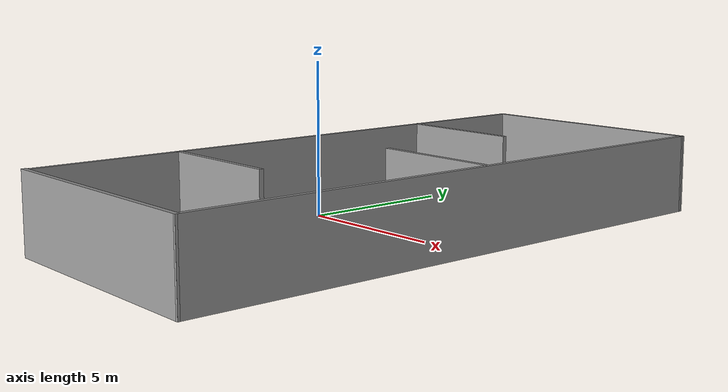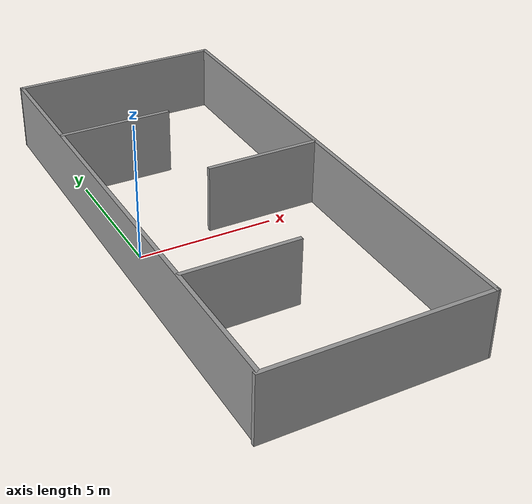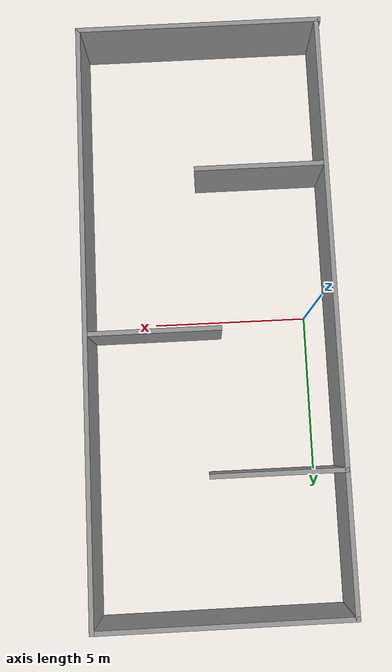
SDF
<?xml version='1.0'?>
<sdf version='1.7'>
  <model name='dsw'>
    <pose>3.16563 -0.058902 0 0 -0 0</pose>
    <link name='Wall_0'>
      <collision name='Wall_0_Collision'>
        <geometry>
          <box>
            <size>8 0.15 2.5</size>
          </box>
        </geometry>
        <pose>0 0 1.25 0 -0 0</pose>
      </collision>
      <visual name='Wall_0_Visual'>
        <pose>0 0 1.25 0 -0 0</pose>
        <geometry>
          <box>
            <size>8 0.15 2.5</size>
          </box>
        </geometry>
        <material>
          <script>
            <uri>file://media/materials/scripts/gazebo.material</uri>
            <name>Gazebo/Grey</name>
          </script>
          <ambient>1 1 1 1</ambient>
        </material>
        <meta>
          <layer>0</layer>
        </meta>
      </visual>
      <pose>-0.070634 -9.47226 0 0 -0 0</pose>
    </link>
    <link name='Wall_1'>
      <collision name='Wall_1_Collision'>
        <geometry>
          <box>
            <size>19.095 0.15 2.5</size>
          </box>
        </geometry>
        <pose>0 0 1.25 0 -0 0</pose>
      </collision>
      <visual name='Wall_1_Visual'>
        <pose>0 0 1.25 0 -0 0</pose>
        <geometry>
          <box>
            <size>19.095 0.15 2.5</size>
          </box>
        </geometry>
        <material>
          <script>
            <uri>file://media/materials/scripts/gazebo.material</uri>
            <name>Gazebo/Grey</name>
          </script>
          <ambient>1 1 1 1</ambient>
        </material>
        <meta>
          <layer>0</layer>
        </meta>
      </visual>
      <pose>3.92472 0 0 0 -0 1.56337</pose>
    </link>
    <link name='Wall_2'>
      <collision name='Wall_2_Collision'>
        <geometry>
          <box>
            <size>8.07576 0.15 2.5</size>
          </box>
        </geometry>
        <pose>0 0 1.25 0 -0 0</pose>
      </collision>
      <visual name='Wall_2_Visual'>
        <pose>0 0 1.25 0 -0 0</pose>
        <geometry>
          <box>
            <size>8.07576 0.15 2.5</size>
          </box>
        </geometry>
        <material>
          <script>
            <uri>file://media/materials/scripts/gazebo.material</uri>
            <name>Gazebo/Grey</name>
          </script>
          <ambient>1 1 1 1</ambient>
        </material>
        <meta>
          <layer>0</layer>
        </meta>
      </visual>
      <pose>0.032219 9.46069 0 0 -0 -3.13867</pose>
    </link>
    <link name='Wall_3'>
      <collision name='Wall_3_Collision'>
        <geometry>
          <box>
            <size>19 0.15 2.5</size>
          </box>
        </geometry>
        <pose>0 0 1.25 0 -0 0</pose>
      </collision>
      <visual name='Wall_3_Visual'>
        <pose>0 0 1.25 0 -0 0</pose>
        <geometry>
          <box>
            <size>19 0.15 2.5</size>
          </box>
        </geometry>
        <material>
          <script>
            <uri>file://media/materials/scripts/gazebo.material</uri>
            <name>Gazebo/Grey</name>
          </script>
          <ambient>1 1 1 1</ambient>
        </material>
        <meta>
          <layer>0</layer>
        </meta>
      </visual>
      <pose>-3.93064 0.024126 0 0 -0 -1.5708</pose>
    </link>
    <link name='Wall_5'>
      <collision name='Wall_5_Collision'>
        <geometry>
          <box>
            <size>4.25 0.15 2.5</size>
          </box>
        </geometry>
        <pose>0 0 1.25 0 -0 0</pose>
      </collision>
      <visual name='Wall_5_Visual'>
        <pose>0 0 1.25 0 -0 0</pose>
        <geometry>
          <box>
            <size>4.25 0.15 2.5</size>
          </box>
        </geometry>
        <material>
          <script>
            <uri>file://media/materials/scripts/gazebo.material</uri>
            <name>Gazebo/Grey</name>
          </script>
          <ambient>1 1 1 1</ambient>
        </material>
        <meta>
          <layer>0</layer>
        </meta>
      </visual>
      <pose>-1.83662 -4.61784 0 0 -0 0</pose>
    </link>
    <link name='Wall_7'>
      <collision name='Wall_7_Collision'>
        <geometry>
          <box>
            <size>4.25 0.15 2.5</size>
          </box>
        </geometry>
        <pose>0 0 1.25 0 -0 0</pose>
      </collision>
      <visual name='Wall_7_Visual'>
        <pose>0 0 1.25 0 -0 0</pose>
        <geometry>
          <box>
            <size>4.25 0.15 2.5</size>
          </box>
        </geometry>
        <material>
          <script>
            <uri>file://media/materials/scripts/gazebo.material</uri>
            <name>Gazebo/Grey</name>
          </script>
          <ambient>1 1 1 1</ambient>
        </material>
        <meta>
          <layer>0</layer>
        </meta>
      </visual>
      <pose>1.78677 0.522478 0 0 -0 3.14159</pose>
    </link>
    <link name='Wall_9'>
      <collision name='Wall_9_Collision'>
        <geometry>
          <box>
            <size>4.25 0.15 2.5</size>
          </box>
        </geometry>
        <pose>0 0 1.25 0 -0 0</pose>
      </collision>
      <visual name='Wall_9_Visual'>
        <pose>0 0 1.25 0 -0 0</pose>
        <geometry>
          <box>
            <size>4.25 0.15 2.5</size>
          </box>
        </geometry>
        <material>
          <script>
            <uri>file://media/materials/scripts/gazebo.material</uri>
            <name>Gazebo/Grey</name>
          </script>
          <ambient>1 1 1 1</ambient>
        </material>
        <meta>
          <layer>0</layer>
        </meta>
      </visual>
      <pose>-1.84933 5.0616 0 0 -0 0</pose>
    </link>
    <static>1</static>
  </model>
</sdf>
